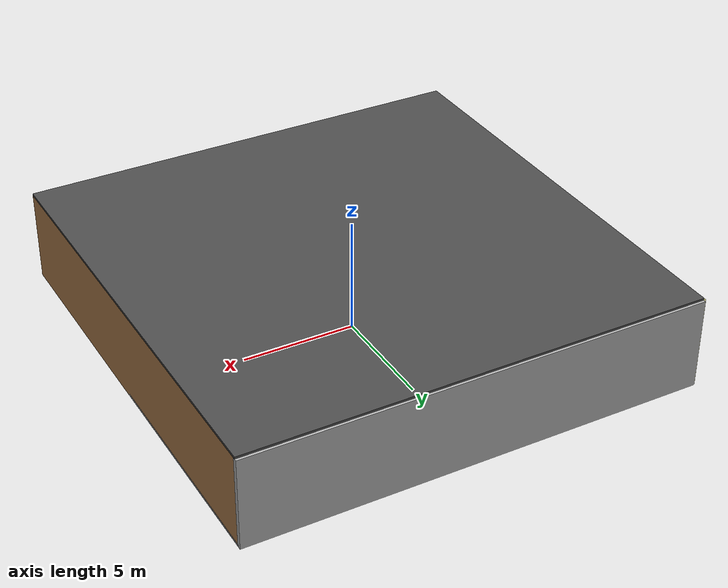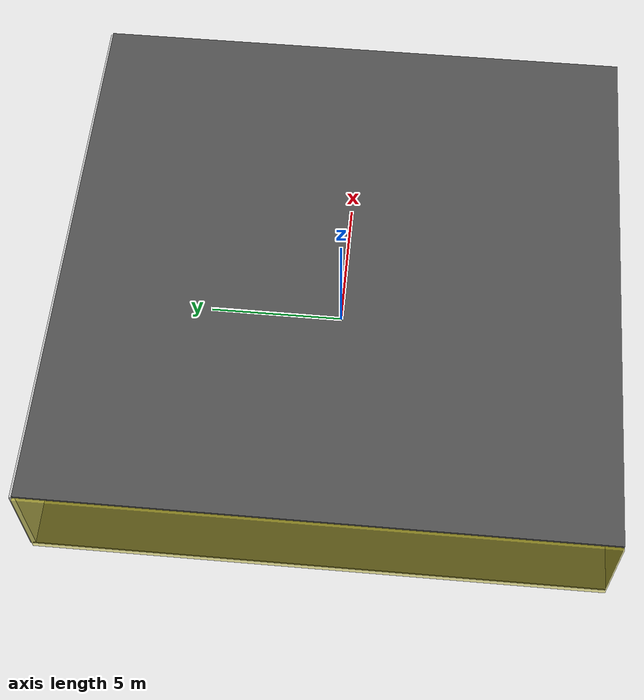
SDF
<sdf version="1.4">
 <world name="default">
  <physics type="ode">
   <max_step_size>0.001</max_step_size>
   <real_time_factor>1</real_time_factor>
   <real_time_update_rate>1000</real_time_update_rate>
   <gravity>0 0 -9.8</gravity>
  </physics>
  <scene><ambient>0.4 0.4 0.4 1</ambient><background>0.7 0.7 0.7 1</background><shadows>1</shadows></scene>
  <model name="Surrounding">
   <static>1</static>
   <link name="Ceiling">
    <collision name="Ceiling_Collision"><geometry><box><size>20 20 0.1</size></box></geometry></collision>
    <visual name="Ceiling_Visual">
     <geometry><box><size>20 20 0.1</size></box></geometry>
     <material>
      <script><uri>file://media/materials/scripts/gazebo.material</uri><name>Gazebo/DarkGrey</name></script>
     </material>
    </visual>
    <pose>0 0 4.05 0 0 0</pose>
   </link>
   <link name="Wall_South">
    <collision name="Wall_South_Collision">
     <geometry><box><size>20 0 4</size></box></geometry>
     <pose>0 0 2 0 -0 0</pose>
    </collision>
    <visual name="Wall_South_Visual">
     <pose>0 0 2 0 -0 0</pose>
     <geometry><box><size>20 0 4</size></box></geometry>
     <material>
      <script><uri>file://media/materials/scripts/gazebo.material</uri><name>Gazebo/Road</name></script>
     </material>
    </visual>
    <velocity_decay><linear>0</linear><angular>0</angular></velocity_decay>
    <pose>0 -10 0 0 -0 0</pose>
   </link>
   <link name="Wall_East">
    <collision name="Wall_21_Collision">
     <geometry><box><size>20 0 4</size></box></geometry>
     <pose>0 0 2 0 -0 0</pose>
    </collision>
    <visual name="Wall_21_Visual">
     <pose>0 0 2 0 -0 0</pose>
     <geometry><box><size>20 0 4</size></box></geometry>
     <material>
      <script><uri>file://media/materials/scripts/gazebo.material</uri><name>Gazebo/WoodFloor</name></script>
     </material>
    </visual>
    <velocity_decay><linear>0</linear><angular>0</angular></velocity_decay>
    <pose>10 0 0 0 -0 1.5708</pose>
   </link>
   <link name="Wall_North">
    <collision name="Wall_22_Collision">
     <geometry><box><size>20 0.2 4</size></box></geometry>
     <pose>0 0 2 0 -0 0</pose>
    </collision>
    <visual name="Wall_22_Visual">
     <pose>0 0 2 0 -0 0</pose>
     <geometry><box><size>20 0.2 4</size></box></geometry>
     <material>
      <script><uri>file://media/materials/scripts/gazebo.material</uri><name>Gazebo/LightOff</name></script>
     </material>
    </visual>
    <velocity_decay><linear>0</linear><angular>0</angular></velocity_decay>
    <pose>0 10 0 0 -0 0</pose>
   </link>
   <link name="Wall_West">
    <collision name="Wall_23_Collision">
     <geometry><box><size>20 0.2 4</size></box></geometry>
     <pose>0 0 2 0 -0 0</pose>
    </collision>
    <visual name="Wall_23_Visual">
     <pose>0 0 2 0 -0 0</pose>
     <geometry><box><size>20 0.2 4</size></box></geometry>
     <material>
      <script>
       <uri>file://media/materials/scripts/gazebo.material</uri>
       <name>Gazebo/YellowTransparent</name>
      </script>
     </material>
    </visual>
    <velocity_decay><linear>0</linear><angular>0</angular></velocity_decay>
    <pose>-10 0 0 0 0 -1.5708</pose>
   </link>
   <link name="Ground_link">
    <collision name="collision">
     <pose>0 0 .05 0 -0 0</pose>
     <geometry><box><size>20 20 0.1</size></box></geometry>
    </collision>
    <visual name="visual">
     <pose>0 0 .05 0 -0 0</pose>
     <geometry><box><size>20 20 0.1</size></box></geometry>
     <material>
      <script><uri>file://media/materials/scripts/gazebo.material</uri><name>Gazebo/Black</name></script>
     </material>
    </visual>
   </link>
   <static>1</static>
  </model>
  <spherical_coordinates>
   <surface_model>EARTH_WGS84</surface_model>
   <latitude_deg>0</latitude_deg>
   <longitude_deg>0</longitude_deg>
   <elevation>0</elevation>
   <heading_deg>0</heading_deg>
  </spherical_coordinates>
  <light name="lightball_0" type="diffuse">
   <diffuse>0.8 0.8 0.8 1</diffuse>
   <specular>0.2 0.2 0.2 1</specular>
   <attenuation>
    <range>100</range>
    <constant>0.7</constant>
    <linear>0.01</linear>
    <quadratic>0.001</quadratic>
   </attenuation>
   <direction>-0.5 0.1 -0.9</direction>
   <pose>-0.59833154801 -9.35097903659 2.3478291354 0 0 0</pose>
  </light>
  <light name="lightball_1" type="diffuse">
   <diffuse>0.8 0.8 0.8 1</diffuse>
   <specular>0.2 0.2 0.2 1</specular>
   <attenuation>
    <range>100</range>
    <constant>0.7</constant>
    <linear>0.01</linear>
    <quadratic>0.001</quadratic>
   </attenuation>
   <direction>-0.5 0.1 -0.9</direction>
   <pose>1.31866595777 3.82772093487 2.51056623469 0 0 0</pose>
  </light>
  <light name="lightball_2" type="diffuse">
   <diffuse>0.8 0.8 0.8 1</diffuse>
   <specular>0.2 0.2 0.2 1</specular>
   <attenuation>
    <range>100</range>
    <constant>0.7</constant>
    <linear>0.01</linear>
    <quadratic>0.001</quadratic>
   </attenuation>
   <direction>-0.5 0.1 -0.9</direction>
   <pose>-0.965496442734 6.76476339509 3.74401476954 0 0 0</pose>
  </light>
  <light name="lightball_3" type="diffuse">
   <diffuse>0.8 0.8 0.8 1</diffuse>
   <specular>0.2 0.2 0.2 1</specular>
   <attenuation>
    <range>100</range>
    <constant>0.7</constant>
    <linear>0.01</linear>
    <quadratic>0.001</quadratic>
   </attenuation>
   <direction>-0.5 0.1 -0.9</direction>
   <pose>4.25571253835 -5.53184696564 1.3139832758 0 0 0</pose>
  </light>
  <light name="lightball_4" type="diffuse">
   <diffuse>0.8 0.8 0.8 1</diffuse>
   <specular>0.2 0.2 0.2 1</specular>
   <attenuation>
    <range>100</range>
    <constant>0.7</constant>
    <linear>0.01</linear>
    <quadratic>0.001</quadratic>
   </attenuation>
   <direction>-0.5 0.1 -0.9</direction>
   <pose>-0.953529113869 -6.29416779036 3.54617313427 0 0 0</pose>
  </light>
  <light name="lightball_5" type="diffuse">
   <diffuse>0.8 0.8 0.8 1</diffuse>
   <specular>0.2 0.2 0.2 1</specular>
   <attenuation>
    <range>100</range>
    <constant>0.7</constant>
    <linear>0.01</linear>
    <quadratic>0.001</quadratic>
   </attenuation>
   <direction>-0.5 0.1 -0.9</direction>
   <pose>-3.57175808768 4.000585984 3.17024575407 0 0 0</pose>
  </light>
  <light name="lightball_6" type="diffuse">
   <diffuse>0.8 0.8 0.8 1</diffuse>
   <specular>0.2 0.2 0.2 1</specular>
   <attenuation>
    <range>100</range>
    <constant>0.7</constant>
    <linear>0.01</linear>
    <quadratic>0.001</quadratic>
   </attenuation>
   <direction>-0.5 0.1 -0.9</direction>
   <pose>5.19236406505 1.79540015522 2.54929527037 0 0 0</pose>
  </light>
  <light name="lightball_7" type="diffuse">
   <diffuse>0.8 0.8 0.8 1</diffuse>
   <specular>0.2 0.2 0.2 1</specular>
   <attenuation>
    <range>100</range>
    <constant>0.7</constant>
    <linear>0.01</linear>
    <quadratic>0.001</quadratic>
   </attenuation>
   <direction>-0.5 0.1 -0.9</direction>
   <pose>-8.94145528649 7.4015161947 1.50043677059 0 0 0</pose>
  </light>
  <light name="lightball_8" type="diffuse">
   <diffuse>0.8 0.8 0.8 1</diffuse>
   <specular>0.2 0.2 0.2 1</specular>
   <attenuation>
    <range>100</range>
    <constant>0.7</constant>
    <linear>0.01</linear>
    <quadratic>0.001</quadratic>
   </attenuation>
   <direction>-0.5 0.1 -0.9</direction>
   <pose>8.74752624519 7.06952814568 0.768699057046 0 0 0</pose>
  </light>
  <light name="lightball_9" type="diffuse">
   <diffuse>0.8 0.8 0.8 1</diffuse>
   <specular>0.2 0.2 0.2 1</specular>
   <attenuation>
    <range>100</range>
    <constant>0.7</constant>
    <linear>0.01</linear>
    <quadratic>0.001</quadratic>
   </attenuation>
   <direction>-0.5 0.1 -0.9</direction>
   <pose>2.29938529573 1.56154660741 2.47041275405 0 0 0</pose>
  </light>
  <light name="lightball_10" type="diffuse">
   <diffuse>0.8 0.8 0.8 1</diffuse>
   <specular>0.2 0.2 0.2 1</specular>
   <attenuation>
    <range>100</range>
    <constant>0.7</constant>
    <linear>0.01</linear>
    <quadratic>0.001</quadratic>
   </attenuation>
   <direction>-0.5 0.1 -0.9</direction>
   <pose>3.58035539569 -4.09158408137 3.04685103492 0 0 0</pose>
  </light>
  <light name="lightball_11" type="diffuse">
   <diffuse>0.8 0.8 0.8 1</diffuse>
   <specular>0.2 0.2 0.2 1</specular>
   <attenuation>
    <range>100</range>
    <constant>0.7</constant>
    <linear>0.01</linear>
    <quadratic>0.001</quadratic>
   </attenuation>
   <direction>-0.5 0.1 -0.9</direction>
   <pose>-6.27974599857 -7.83857773733 2.96634873589 0 0 0</pose>
  </light>
  <light name="lightball_12" type="diffuse">
   <diffuse>0.8 0.8 0.8 1</diffuse>
   <specular>0.2 0.2 0.2 1</specular>
   <attenuation>
    <range>100</range>
    <constant>0.7</constant>
    <linear>0.01</linear>
    <quadratic>0.001</quadratic>
   </attenuation>
   <direction>-0.5 0.1 -0.9</direction>
   <pose>-3.76003223472 4.94712336772 2.00504998742 0 0 0</pose>
  </light>
  <include><uri>model://table</uri><pose>-1.29106531643 3.97701984011 0 0 0 0.823389132619</pose></include>
  <include><uri>model://cabinet</uri><pose>7.84003917197 1.72300598683 0 0 0 0.987845301924</pose></include>
 </world>
</sdf>

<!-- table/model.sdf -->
<sdf version="1.5">
  <model name="table">
    <static>true</static>
    <link name="link">
      <collision name="surface">
        <pose>0 0 1.0 0 0 0</pose>
        <geometry>
          <box>
            <size>1.5 0.8 0.03</size>
          </box>
        </geometry>
        <surface>
          <friction>
            <ode>
              <mu>0.6</mu>
              <mu2>0.6</mu2>
            </ode>
          </friction>
        </surface>
      </collision>
      <visual name="visual1">
        <pose>0 0 1.0 0 0 0</pose>
        <geometry>
          <box>
            <size>1.5 0.8 0.03</size>
          </box>
        </geometry>
        <material>
          <script>
            <uri>model://media/materials/scripts/gazebo.material</uri>
            <name>Gazebo/Wood</name>
          </script>
        </material>
      </visual>
      <collision name="front_left_leg">
        <pose>0.68 0.38 0.5 0 0 0</pose>
        <geometry>
          <cylinder>
            <radius>0.02</radius>
            <length>1.0</length>
          </cylinder>
        </geometry>
      </collision>
      <visual name="front_left_leg">
        <pose>0.68 0.38 0.5 0 0 0</pose>
        <geometry>
          <cylinder>
            <radius>0.02</radius>
            <length>1.0</length>
          </cylinder>
        </geometry>
        <material>
          <script>
            <uri>model://media/materials/scripts/gazebo.material</uri>
            <name>Gazebo/Grey</name>
          </script>
        </material>
      </visual>
      <collision name="front_right_leg">
        <pose>0.68 -0.38 0.5 0 0 0</pose>
        <geometry>
          <cylinder>
            <radius>0.02</radius>
            <length>1.0</length>
          </cylinder>
        </geometry>
      </collision>
      <visual name="front_right_leg">
        <pose>0.68 -0.38 0.5 0 0 0</pose>
        <geometry>
          <cylinder>
            <radius>0.02</radius>
            <length>1.0</length>
          </cylinder>
        </geometry>
        <material>
          <script>
            <uri>model://media/materials/scripts/gazebo.material</uri>
            <name>Gazebo/Grey</name>
          </script>
        </material>
      </visual>
      <collision name="back_right_leg">
        <pose>-0.68 -0.38 0.5 0 0 0</pose>
        <geometry>
          <cylinder>
            <radius>0.02</radius>
            <length>1.0</length>
          </cylinder>
        </geometry>
      </collision>
      <visual name="back_right_leg">
        <pose>-0.68 -0.38 0.5 0 0 0</pose>
        <geometry>
          <cylinder>
            <radius>0.02</radius>
            <length>1.0</length>
          </cylinder>
        </geometry>
        <material>
          <script>
            <uri>model://media/materials/scripts/gazebo.material</uri>
            <name>Gazebo/Grey</name>
          </script>
        </material>
      </visual>
      <collision name="back_left_leg">
        <pose>-0.68 0.38 0.5 0 0 0</pose>
        <geometry>
          <cylinder>
            <radius>0.02</radius>
            <length>1.0</length>
          </cylinder>
        </geometry>
      </collision>
      <visual name="back_left_leg">
        <pose>-0.68 0.38 0.5 0 0 0</pose>
        <geometry>
          <cylinder>
            <radius>0.02</radius>
            <length>1.0</length>
          </cylinder>
        </geometry>
        <material>
          <script>
            <uri>model://media/materials/scripts/gazebo.material</uri>
            <name>Gazebo/Grey</name>
          </script>
        </material>
      </visual>
    </link>
  </model>
</sdf>

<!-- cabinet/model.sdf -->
<sdf version="1.5">
  <model name="cabinet">
    <static>true</static>
    <link name="cabinet_bottom_plate">
      <inertial>
        <pose>0 0 -1 0 0 0</pose>
        <inertia>
          <ixx>2.050000</ixx>
          <ixy>0</ixy>
          <ixz>0</ixz>
          <iyy>2.050000</iyy>
          <iyz>0</iyz>
          <izz>2.050000</izz>
        </inertia>
        <mass>25.000000</mass>
      </inertial>
      <collision name="cabinet_bottom_plate_geom">
        <pose>0 0 0.010000 0 0 0</pose>
        <geometry>
          <box>
            <size>0.450000 0.450000 0.020000</size>
          </box>
        </geometry>
      </collision>
      <visual name="cabinet_bottom_plate_geom_visual">
        <pose>0 0 0.010000 0 0 0</pose>
        <geometry>
          <box>
            <size>0.450000 0.450000 0.020000</size>
          </box>
        </geometry>
        <material>
          <script>
            <uri>model://media/materials/scripts/gazebo.material</uri>
            <name>Gazebo/Wood</name>
          </script>
        </material>
      </visual>
      <collision name="cabinet_bottom_plate_geom_cabinet_back_plate">
        <pose>0.235000 0 0.510000 0 0 0</pose>
        <geometry>
          <box>
            <size>0.020000 0.450000 1.020000</size>
          </box>
        </geometry>
      </collision>
      <visual name="cabinet_bottom_plate_geom_cabinet_back_plate_visual">
        <pose>0.235000 0 0.510000 0 0 0</pose>
        <geometry>
          <box>
            <size>0.020000 0.450000 1.020000</size>
          </box>
        </geometry>
        <material>
          <script>
            <uri>model://media/materials/scripts/gazebo.material</uri>
            <name>Gazebo/Wood</name>
          </script>
        </material>
      </visual>
      <collision name="cabinet_bottom_plate_geom_cabinet_left_plate">
        <pose>0 0.235000 0.510000 0 0 0</pose>
        <geometry>
          <box>
            <size>0.450000 0.020000 1.020000</size>
          </box>
        </geometry>
      </collision>
      <visual name="cabinet_bottom_plate_geom_cabinet_left_plate_visual">
        <pose>0 0.235000 0.510000 0 0 0</pose>
        <geometry>
          <box>
            <size>0.450000 0.020000 1.020000</size>
          </box>
        </geometry>
        <material>
          <script>
            <uri>model://media/materials/scripts/gazebo.material</uri>
            <name>Gazebo/Wood</name>
          </script>
        </material>
      </visual>
      <collision name="cabinet_bottom_plate_geom_cabinet_middle_plate">
        <pose>0 0 0.510000 0 0 0</pose>
        <geometry>
          <box>
            <size>0.450000 0.450000 0.020000</size>
          </box>
        </geometry>
      </collision>
      <visual name="cabinet_bottom_plate_geom_cabinet_middle_plate_visual">
        <pose>0 0 0.510000 0 0 0</pose>
        <geometry>
          <box>
            <size>0.450000 0.450000 0.020000</size>
          </box>
        </geometry>
        <material>
          <script>
            <uri>model://media/materials/scripts/gazebo.material</uri>
            <name>Gazebo/Wood</name>
          </script>
        </material>
      </visual>
      <collision name="cabinet_bottom_plate_geom_cabinet_right_plate">
        <pose>0 -0.235000 0.510000 0 0 0</pose>
        <geometry>
          <box>
            <size>0.450000 0.020000 1.020000</size>
          </box>
        </geometry>
      </collision>
      <visual name="cabinet_bottom_plate_geom_cabinet_right_plate_visual">
        <pose>0 -0.235000 0.510000 0 0 0</pose>
        <geometry>
          <box>
            <size>0.450000 0.020000 1.020000</size>
          </box>
        </geometry>
        <material>
          <script>
            <uri>model://media/materials/scripts/gazebo.material</uri>
            <name>Gazebo/Wood</name>
          </script>
        </material>
      </visual>
      <collision name="cabinet_bottom_plate_geom_cabinet_top_plate">
        <pose>0 0 1.010000 0 0 0</pose>
        <geometry>
          <box>
            <size>0.450000 0.450000 0.020000</size>
          </box>
        </geometry>
      </collision>
      <visual name="cabinet_bottom_plate_geom_cabinet_top_plate_visual">
        <pose>0 0 1.010000 0 0 0</pose>
        <geometry>
          <box>
            <size>0.450000 0.450000 0.020000</size>
          </box>
        </geometry>
        <material>
          <script>
            <uri>model://media/materials/scripts/gazebo.material</uri>
            <name>Gazebo/Wood</name>
          </script>
        </material>
      </visual>
    </link>
  </model>
</sdf>
